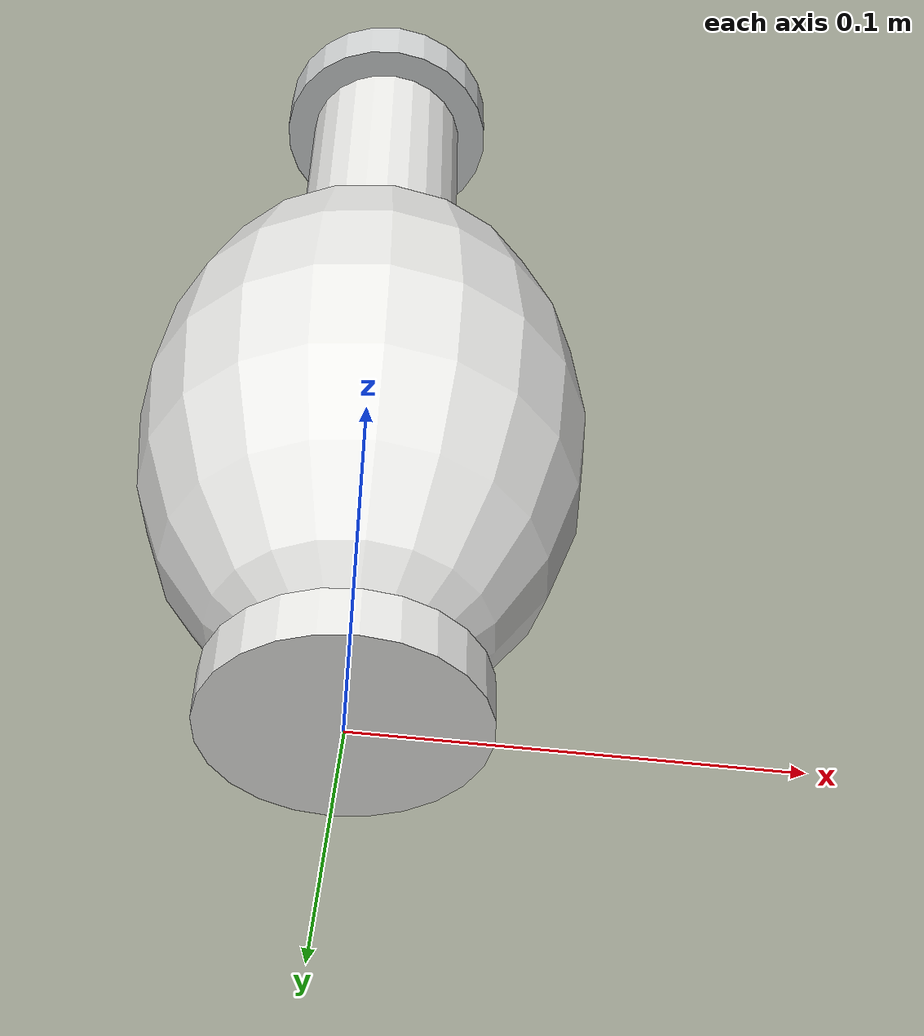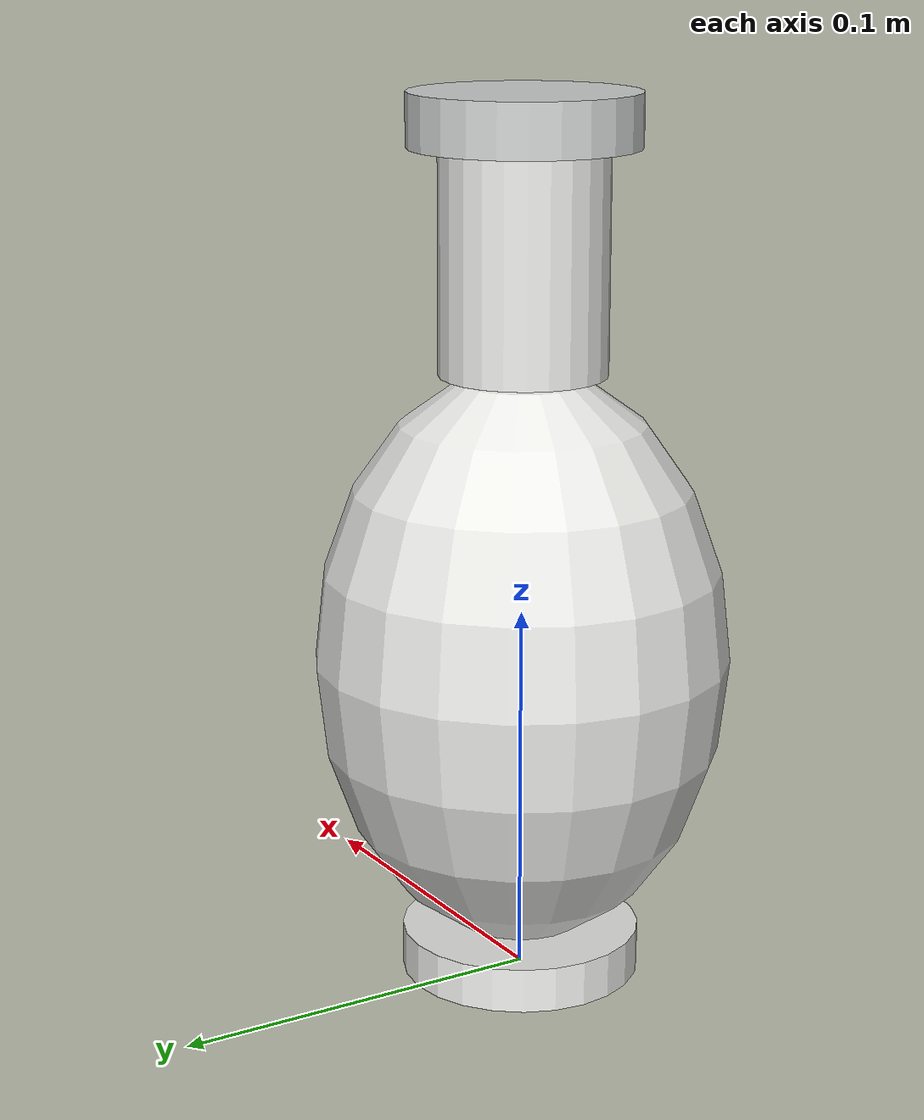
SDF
<?xml version="1.0"?>
<sdf version="1.6">
  <model name="decor_vase_tall">
    <static>true</static>
    <link name="link">
      <visual name="foot">
        <pose>0 0 0.006 0 0 0</pose>
        <geometry><cylinder><radius>0.032</radius><length>0.012</length></cylinder></geometry>
        <material><pbr><metal><metalness>0.00</metalness><roughness>0.15</roughness></metal></pbr><ambient>0.900 0.900 0.890 1</ambient><diffuse>0.900 0.900 0.890 1</diffuse><specular>0.3 0.3 0.3 1</specular><emissive>0 0 0 1</emissive></material>
      </visual>
      <visual name="body">
        <pose>0 0 0.088 0 0 0</pose>
        <geometry><ellipsoid><radii>0.055 0.055 0.078</radii></ellipsoid></geometry>
        <material><pbr><metal><metalness>0.00</metalness><roughness>0.15</roughness></metal></pbr><ambient>0.900 0.900 0.890 1</ambient><diffuse>0.900 0.900 0.890 1</diffuse><specular>0.3 0.3 0.3 1</specular><emissive>0 0 0 1</emissive></material>
      </visual>
      <visual name="neck">
        <pose>0 0 0.194 0 0 0</pose>
        <geometry><cylinder><radius>0.022</radius><length>0.06</length></cylinder></geometry>
        <material><pbr><metal><metalness>0.00</metalness><roughness>0.15</roughness></metal></pbr><ambient>0.900 0.900 0.890 1</ambient><diffuse>0.900 0.900 0.890 1</diffuse><specular>0.3 0.3 0.3 1</specular><emissive>0 0 0 1</emissive></material>
      </visual>
      <visual name="rim">
        <pose>0 0 0.229 0 0 0</pose>
        <geometry><cylinder><radius>0.03</radius><length>0.014</length></cylinder></geometry>
        <material><pbr><metal><metalness>0.00</metalness><roughness>0.12</roughness></metal></pbr><ambient>0.800 0.810 0.810 1</ambient><diffuse>0.800 0.810 0.810 1</diffuse><specular>0.3 0.3 0.3 1</specular><emissive>0 0 0 1</emissive></material>
      </visual>
      <collision name="body">
        <pose>0 0 0.118 0 0 0</pose>
        <geometry><cylinder><radius>0.055</radius><length>0.236</length></cylinder></geometry>
      </collision>
    </link>
    <allow_auto_disable>1</allow_auto_disable>
  </model>
</sdf>
